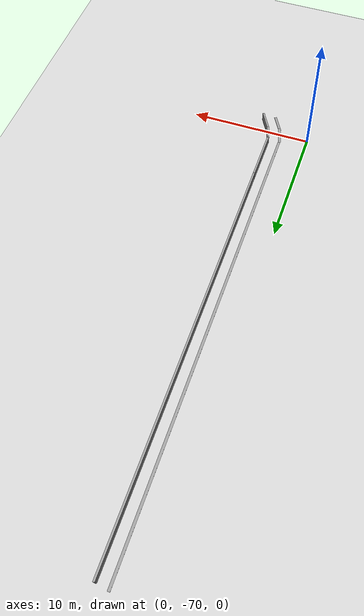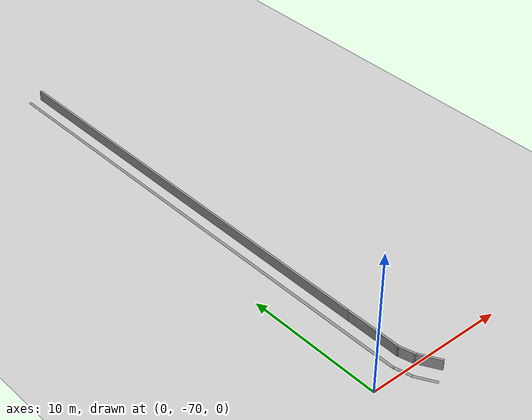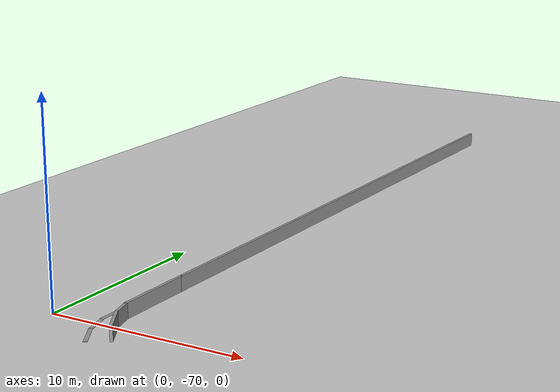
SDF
<sdf version="1.6">
 <world name="default">
  <model name="ground_plane">
   <static>1</static>
   <link name="link">
    <collision name="collision">
     <geometry><plane><normal>0 0 1</normal><size>100 100</size></plane></geometry>
     <surface>
      <contact><collide_bitmask>65535</collide_bitmask></contact>
      <friction><ode><mu>100</mu><mu2>50</mu2></ode></friction>
     </surface>
    </collision>
    <visual name="visual">
     <cast_shadows>0</cast_shadows>
     <geometry><plane><normal>0 0 1</normal><size>100 100</size></plane></geometry>
     <material>
      <script><uri>file://media/materials/scripts/gazebo.material</uri><name>Gazebo/Grey</name></script>
     </material>
    </visual>
   </link>
  </model>
  <model name="GercekDuvarSeritKoyu1">
   <link name="Wall_379">
    <pose>-3.89995 -57.7166 0 0 -0 0</pose>
    <visual name="Wall_379_Visual">
     <pose>0 0 0.005 0 -0 0</pose>
     <geometry><box><size>37.0505 0.2 0.01</size></box></geometry>
     <material>
      <script><uri>file://media/materials/scripts/gazebo.material</uri><name>Gazebo/Grey</name></script>
      <ambient>1 1 1 1</ambient>
      <shader type="pixel"/>
     </material>
     <meta><layer>0</layer></meta>
    </visual>
    <collision name="Wall_379_Collision">
     <pose>0 0 0.005 0 -0 0</pose>
     <geometry><box><size>37.0505 0.2 0.01</size></box></geometry>
     <surface>
      <friction>
       <ode><mu>1</mu><mu2>1</mu2><fdir1>0 0 0</fdir1><slip1>0</slip1><slip2>0</slip2></ode>
       <torsional>
        <coefficient>1</coefficient>
        <patch_radius>0</patch_radius>
        <surface_radius>0</surface_radius>
        <use_patch_radius>1</use_patch_radius>
        <ode><slip>0</slip></ode>
       </torsional>
      </friction>
      <bounce><restitution_coefficient>0</restitution_coefficient><threshold>1e+06</threshold></bounce>
      <contact>
       <collide_without_contact>0</collide_without_contact>
       <collide_without_contact_bitmask>1</collide_without_contact_bitmask>
       <collide_bitmask>1</collide_bitmask>
       <ode>
        <soft_cfm>0</soft_cfm>
        <soft_erp>0.2</soft_erp>
        <kp>1e+13</kp>
        <kd>1</kd>
        <max_vel>0.01</max_vel>
        <min_depth>0</min_depth>
       </ode>
       <bullet>
        <split_impulse>1</split_impulse>
        <split_impulse_penetration_threshold>-0.01</split_impulse_penetration_threshold>
        <soft_cfm>0</soft_cfm>
        <soft_erp>0.2</soft_erp>
        <kp>1e+13</kp>
        <kd>1</kd>
       </bullet>
      </contact>
     </surface>
    </collision>
   </link>
   <link name="Wall_381">
    <pose>15.1771 -57.5421 0 0 -0 0.261509</pose>
    <visual name="Wall_381_Visual">
     <pose>0 0 0.005 0 -0 0</pose>
     <geometry><box><size>1.55034 0.2 0.01</size></box></geometry>
     <material>
      <script><uri>file://media/materials/scripts/gazebo.material</uri><name>Gazebo/Grey</name></script>
      <ambient>1 1 1 1</ambient>
      <shader type="pixel"/>
     </material>
     <meta><layer>0</layer></meta>
    </visual>
    <collision name="Wall_381_Collision">
     <pose>0 0 0.005 0 -0 0</pose>
     <geometry><box><size>1.55034 0.2 0.01</size></box></geometry>
     <surface>
      <friction>
       <ode><mu>1</mu><mu2>1</mu2><fdir1>0 0 0</fdir1><slip1>0</slip1><slip2>0</slip2></ode>
       <torsional>
        <coefficient>1</coefficient>
        <patch_radius>0</patch_radius>
        <surface_radius>0</surface_radius>
        <use_patch_radius>1</use_patch_radius>
        <ode><slip>0</slip></ode>
       </torsional>
      </friction>
      <bounce><restitution_coefficient>0</restitution_coefficient><threshold>1e+06</threshold></bounce>
      <contact>
       <collide_without_contact>0</collide_without_contact>
       <collide_without_contact_bitmask>1</collide_without_contact_bitmask>
       <collide_bitmask>1</collide_bitmask>
       <ode>
        <soft_cfm>0</soft_cfm>
        <soft_erp>0.2</soft_erp>
        <kp>1e+13</kp>
        <kd>1</kd>
        <max_vel>0.01</max_vel>
        <min_depth>0</min_depth>
       </ode>
       <bullet>
        <split_impulse>1</split_impulse>
        <split_impulse_penetration_threshold>-0.01</split_impulse_penetration_threshold>
        <soft_cfm>0</soft_cfm>
        <soft_erp>0.2</soft_erp>
        <kp>1e+13</kp>
        <kd>1</kd>
       </bullet>
      </contact>
     </surface>
    </collision>
   </link>
   <link name="Wall_384">
    <pose>16.4141 -57.0301 0 0 -0 0.523278</pose>
    <visual name="Wall_384_Visual">
     <pose>0 0 0.005 0 -0 0</pose>
     <geometry><box><size>1.55039 0.2 0.01</size></box></geometry>
     <material>
      <script><uri>file://media/materials/scripts/gazebo.material</uri><name>Gazebo/Grey</name></script>
      <ambient>1 1 1 1</ambient>
      <shader type="pixel"/>
     </material>
     <meta><layer>0</layer></meta>
    </visual>
    <collision name="Wall_384_Collision">
     <pose>0 0 0.005 0 -0 0</pose>
     <geometry><box><size>1.55039 0.2 0.01</size></box></geometry>
     <surface>
      <friction>
       <ode><mu>1</mu><mu2>1</mu2><fdir1>0 0 0</fdir1><slip1>0</slip1><slip2>0</slip2></ode>
       <torsional>
        <coefficient>1</coefficient>
        <patch_radius>0</patch_radius>
        <surface_radius>0</surface_radius>
        <use_patch_radius>1</use_patch_radius>
        <ode><slip>0</slip></ode>
       </torsional>
      </friction>
      <bounce><restitution_coefficient>0</restitution_coefficient><threshold>1e+06</threshold></bounce>
      <contact>
       <collide_without_contact>0</collide_without_contact>
       <collide_without_contact_bitmask>1</collide_without_contact_bitmask>
       <collide_bitmask>1</collide_bitmask>
       <ode>
        <soft_cfm>0</soft_cfm>
        <soft_erp>0.2</soft_erp>
        <kp>1e+13</kp>
        <kd>1</kd>
        <max_vel>0.01</max_vel>
        <min_depth>0</min_depth>
       </ode>
       <bullet>
        <split_impulse>1</split_impulse>
        <split_impulse_penetration_threshold>-0.01</split_impulse_penetration_threshold>
        <soft_cfm>0</soft_cfm>
        <soft_erp>0.2</soft_erp>
        <kp>1e+13</kp>
        <kd>1</kd>
       </bullet>
      </contact>
     </surface>
    </collision>
   </link>
   <link name="Wall_89">
    <pose>-6.12695 -56.8056 0 0 -0 0</pose>
    <inertial>
     <mass>1</mass>
     <inertia><ixx>1</ixx><ixy>0</ixy><ixz>0</ixz><iyy>1</iyy><iyz>0</iyz><izz>1</izz></inertia>
    </inertial>
    <visual name="Wall_89_Visual">
     <pose>0 0 0.375 0 -0 0</pose>
     <geometry><box><size>32.25 0.15 0.75</size></box></geometry>
     <material>
      <script><uri>file://media/materials/scripts/gazebo.material</uri><name>Gazebo/Grey</name></script>
      <ambient>0.5 0.5 0.5 1</ambient>
      <shader type="pixel"><normal_map>__default__</normal_map></shader>
      <diffuse>0.7 0.7 0.7 1</diffuse>
      <specular>0.01 0.01 0.01 1</specular>
      <emissive>0 0 0 1</emissive>
     </material>
     <meta><layer>0</layer></meta>
    </visual>
    <collision name="Wall_89_Collision">
     <pose>0 0 0.375 0 -0 0</pose>
     <geometry><box><size>32.25 0.15 0.75</size></box></geometry>
     <surface>
      <friction>
       <ode><mu>1</mu><mu2>1</mu2><fdir1>0 0 0</fdir1><slip1>0</slip1><slip2>0</slip2></ode>
       <torsional>
        <coefficient>1</coefficient>
        <patch_radius>0</patch_radius>
        <surface_radius>0</surface_radius>
        <use_patch_radius>1</use_patch_radius>
        <ode><slip>0</slip></ode>
       </torsional>
      </friction>
      <bounce><restitution_coefficient>0</restitution_coefficient><threshold>1e+06</threshold></bounce>
      <contact>
       <collide_without_contact>0</collide_without_contact>
       <collide_without_contact_bitmask>1</collide_without_contact_bitmask>
       <collide_bitmask>1</collide_bitmask>
       <ode>
        <soft_cfm>0</soft_cfm>
        <soft_erp>0.2</soft_erp>
        <kp>1e+13</kp>
        <kd>1</kd>
        <max_vel>0.01</max_vel>
        <min_depth>0</min_depth>
       </ode>
       <bullet>
        <split_impulse>1</split_impulse>
        <split_impulse_penetration_threshold>-0.01</split_impulse_penetration_threshold>
        <soft_cfm>0</soft_cfm>
        <soft_erp>0.2</soft_erp>
        <kp>1e+13</kp>
        <kd>1</kd>
       </bullet>
      </contact>
     </surface>
    </collision>
   </link>
   <link name="Wall_91">
    <pose>11.9731 -56.8056 0 0 -0 0</pose>
    <inertial>
     <mass>1</mass>
     <inertia><ixx>1</ixx><ixy>0</ixy><ixz>0</ixz><iyy>1</iyy><iyz>0</iyz><izz>1</izz></inertia>
    </inertial>
    <visual name="Wall_91_Visual">
     <pose>0 0 0.375 0 -0 0</pose>
     <geometry><box><size>4.25 0.15 0.75</size></box></geometry>
     <material>
      <script><uri>file://media/materials/scripts/gazebo.material</uri><name>Gazebo/Grey</name></script>
      <ambient>0.5 0.5 0.5 1</ambient>
      <shader type="pixel"><normal_map>__default__</normal_map></shader>
      <diffuse>0.7 0.7 0.7 1</diffuse>
      <specular>0.01 0.01 0.01 1</specular>
      <emissive>0 0 0 1</emissive>
     </material>
     <meta><layer>0</layer></meta>
    </visual>
    <collision name="Wall_91_Collision">
     <pose>0 0 0.375 0 -0 0</pose>
     <geometry><box><size>4.25 0.15 0.75</size></box></geometry>
     <surface>
      <friction>
       <ode><mu>1</mu><mu2>1</mu2><fdir1>0 0 0</fdir1><slip1>0</slip1><slip2>0</slip2></ode>
       <torsional>
        <coefficient>1</coefficient>
        <patch_radius>0</patch_radius>
        <surface_radius>0</surface_radius>
        <use_patch_radius>1</use_patch_radius>
        <ode><slip>0</slip></ode>
       </torsional>
      </friction>
      <bounce><restitution_coefficient>0</restitution_coefficient><threshold>1e+06</threshold></bounce>
      <contact>
       <collide_without_contact>0</collide_without_contact>
       <collide_without_contact_bitmask>1</collide_without_contact_bitmask>
       <collide_bitmask>1</collide_bitmask>
       <ode>
        <soft_cfm>0</soft_cfm>
        <soft_erp>0.2</soft_erp>
        <kp>1e+13</kp>
        <kd>1</kd>
        <max_vel>0.01</max_vel>
        <min_depth>0</min_depth>
       </ode>
       <bullet>
        <split_impulse>1</split_impulse>
        <split_impulse_penetration_threshold>-0.01</split_impulse_penetration_threshold>
        <soft_cfm>0</soft_cfm>
        <soft_erp>0.2</soft_erp>
        <kp>1e+13</kp>
        <kd>1</kd>
       </bullet>
      </contact>
     </surface>
    </collision>
   </link>
   <link name="Wall_94">
    <pose>14.5541 -56.6631 0 0 -0 0.262184</pose>
    <inertial>
     <mass>1</mass>
     <inertia><ixx>1</ixx><ixy>0</ixy><ixz>0</ixz><iyy>1</iyy><iyz>0</iyz><izz>1</izz></inertia>
    </inertial>
    <visual name="Wall_94_Visual">
     <pose>0 0 0.375 0 -0 0</pose>
     <geometry><box><size>1.25 0.15 0.75</size></box></geometry>
     <material>
      <script><uri>file://media/materials/scripts/gazebo.material</uri><name>Gazebo/Grey</name></script>
      <ambient>0.5 0.5 0.5 1</ambient>
      <shader type="pixel"><normal_map>__default__</normal_map></shader>
      <diffuse>0.7 0.7 0.7 1</diffuse>
      <specular>0.01 0.01 0.01 1</specular>
      <emissive>0 0 0 1</emissive>
     </material>
     <meta><layer>0</layer></meta>
    </visual>
    <collision name="Wall_94_Collision">
     <pose>0 0 0.375 0 -0 0</pose>
     <geometry><box><size>1.25 0.15 0.75</size></box></geometry>
     <surface>
      <friction>
       <ode><mu>1</mu><mu2>1</mu2><fdir1>0 0 0</fdir1><slip1>0</slip1><slip2>0</slip2></ode>
       <torsional>
        <coefficient>1</coefficient>
        <patch_radius>0</patch_radius>
        <surface_radius>0</surface_radius>
        <use_patch_radius>1</use_patch_radius>
        <ode><slip>0</slip></ode>
       </torsional>
      </friction>
      <bounce><restitution_coefficient>0</restitution_coefficient><threshold>1e+06</threshold></bounce>
      <contact>
       <collide_without_contact>0</collide_without_contact>
       <collide_without_contact_bitmask>1</collide_without_contact_bitmask>
       <collide_bitmask>1</collide_bitmask>
       <ode>
        <soft_cfm>0</soft_cfm>
        <soft_erp>0.2</soft_erp>
        <kp>1e+13</kp>
        <kd>1</kd>
        <max_vel>0.01</max_vel>
        <min_depth>0</min_depth>
       </ode>
       <bullet>
        <split_impulse>1</split_impulse>
        <split_impulse_penetration_threshold>-0.01</split_impulse_penetration_threshold>
        <soft_cfm>0</soft_cfm>
        <soft_erp>0.2</soft_erp>
        <kp>1e+13</kp>
        <kd>1</kd>
       </bullet>
      </contact>
     </surface>
    </collision>
   </link>
   <link name="Wall_95">
    <pose>15.7781 -56.1206 0 0 -0 0.523487</pose>
    <inertial>
     <mass>1</mass>
     <inertia><ixx>1</ixx><ixy>0</ixy><ixz>0</ixz><iyy>1</iyy><iyz>0</iyz><izz>1</izz></inertia>
    </inertial>
    <visual name="Wall_95_Visual">
     <pose>0 0 0.375 0 -0 0</pose>
     <geometry><box><size>1.75 0.15 0.75</size></box></geometry>
     <material>
      <script><uri>file://media/materials/scripts/gazebo.material</uri><name>Gazebo/Grey</name></script>
      <ambient>0.5 0.5 0.5 1</ambient>
      <shader type="pixel"><normal_map>__default__</normal_map></shader>
      <diffuse>0.7 0.7 0.7 1</diffuse>
      <specular>0.01 0.01 0.01 1</specular>
      <emissive>0 0 0 1</emissive>
     </material>
     <meta><layer>0</layer></meta>
    </visual>
    <collision name="Wall_95_Collision">
     <pose>0 0 0.375 0 -0 0</pose>
     <geometry><box><size>1.75 0.15 0.75</size></box></geometry>
     <surface>
      <friction>
       <ode><mu>1</mu><mu2>1</mu2><fdir1>0 0 0</fdir1><slip1>0</slip1><slip2>0</slip2></ode>
       <torsional>
        <coefficient>1</coefficient>
        <patch_radius>0</patch_radius>
        <surface_radius>0</surface_radius>
        <use_patch_radius>1</use_patch_radius>
        <ode><slip>0</slip></ode>
       </torsional>
      </friction>
      <bounce><restitution_coefficient>0</restitution_coefficient><threshold>1e+06</threshold></bounce>
      <contact>
       <collide_without_contact>0</collide_without_contact>
       <collide_without_contact_bitmask>1</collide_without_contact_bitmask>
       <collide_bitmask>1</collide_bitmask>
       <ode>
        <soft_cfm>0</soft_cfm>
        <soft_erp>0.2</soft_erp>
        <kp>1e+13</kp>
        <kd>1</kd>
        <max_vel>0.01</max_vel>
        <min_depth>0</min_depth>
       </ode>
       <bullet>
        <split_impulse>1</split_impulse>
        <split_impulse_penetration_threshold>-0.01</split_impulse_penetration_threshold>
        <soft_cfm>0</soft_cfm>
        <soft_erp>0.2</soft_erp>
        <kp>1e+13</kp>
        <kd>1</kd>
       </bullet>
      </contact>
     </surface>
    </collision>
   </link>
   <static>1</static>
   <pose>59.9324 -54.7034 -0 0 0 -1.5695</pose>
  </model>
 </world>
</sdf>
